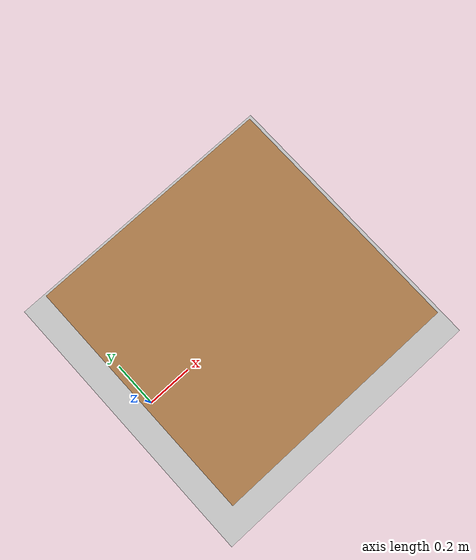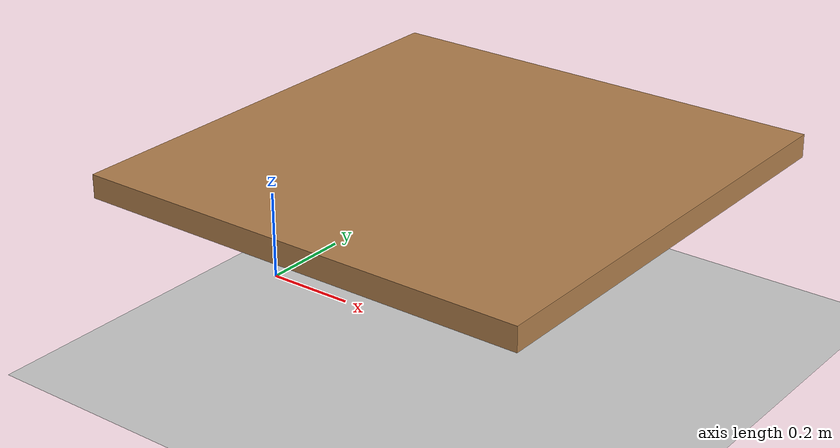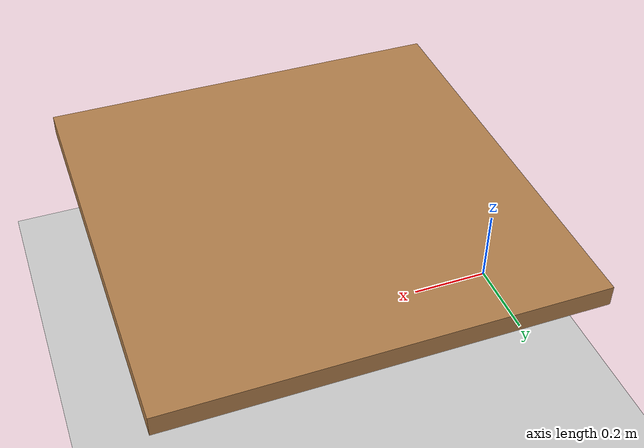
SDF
<?xml version="1.0" ?>
<sdf version="1.6">
  <world name="pick_and_place_world">
    <include>
      <uri>model://sun</uri>
    </include>
    <include>
      <uri>model://ground_plane</uri>
    </include>

    <!-- 添加一个简单的桌子 -->
    <model name="table">
      <static>true</static>
      <link name="link">
        <collision name="collision">
          <geometry>
            <box>
              <size>1.0 1.0 0.05</size>
            </box>
          </geometry>
        </collision>
        <visual name="visual">
          <geometry>
            <box>
              <size>1.0 1.0 0.05</size>
            </box>
          </geometry>
          <material>
            <script>
              <uri>file://media/materials/scripts/gazebo.material</uri>
              <name>Gazebo/Wood</name>
            </script>
          </material>
        </visual>
      </link>
      <pose>0.5 0 0.4 0 0 0</pose>
    </model>

    <physics type="ode">
      <real_time_update_rate>1000.0</real_time_update_rate>
      <max_step_size>0.001</max_step_size>
      <real_time_factor>1</real_time_factor>
      <ode>
        <solver>
          <type>quick</type>
          <iters>150</iters>
          <precon_iters>0</precon_iters>
          <sor>1.400000</sor>
          <use_dynamic_moi_rescaling>1</use_dynamic_moi_rescaling>
        </solver>
        <constraints>
          <cfm>0.00001</cfm>
          <erp>0.2</erp>
          <contact_max_correcting_vel>2000.000000</contact_max_correcting_vel>
          <contact_surface_layer>0.01000</contact_surface_layer>
        </constraints>
      </ode>
    </physics>
  </world>
</sdf>
